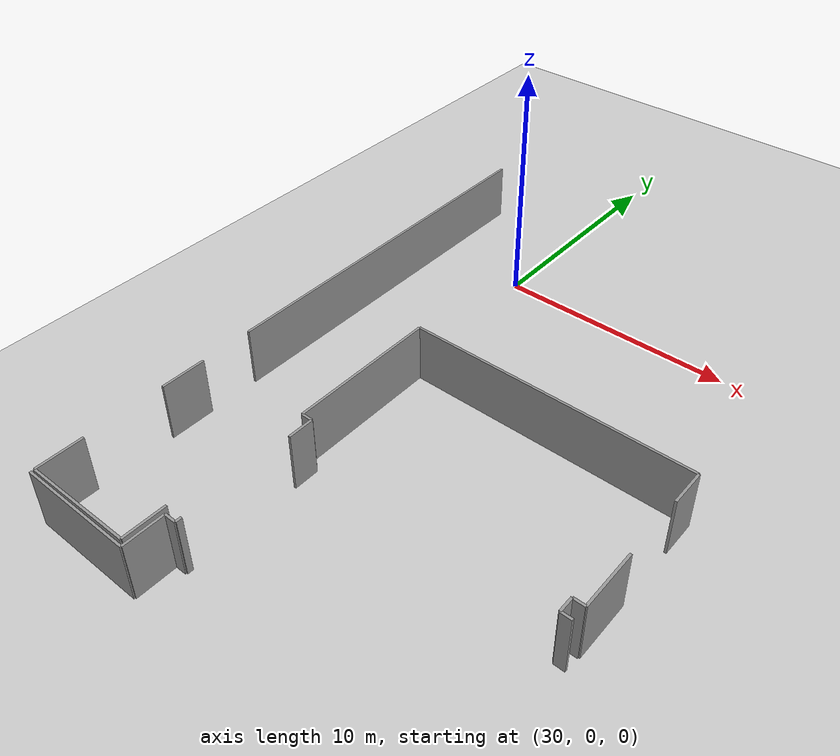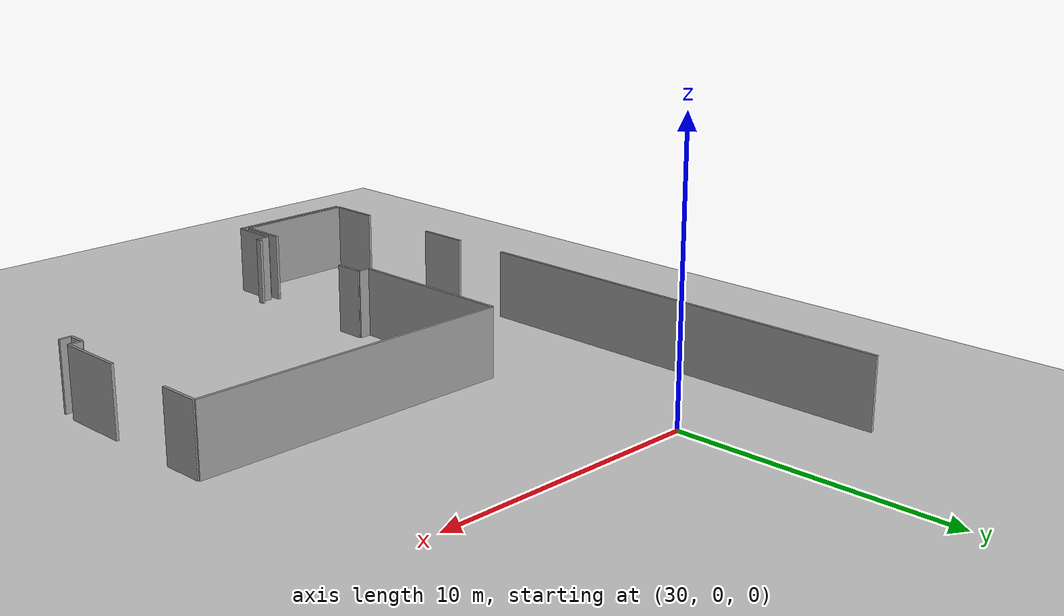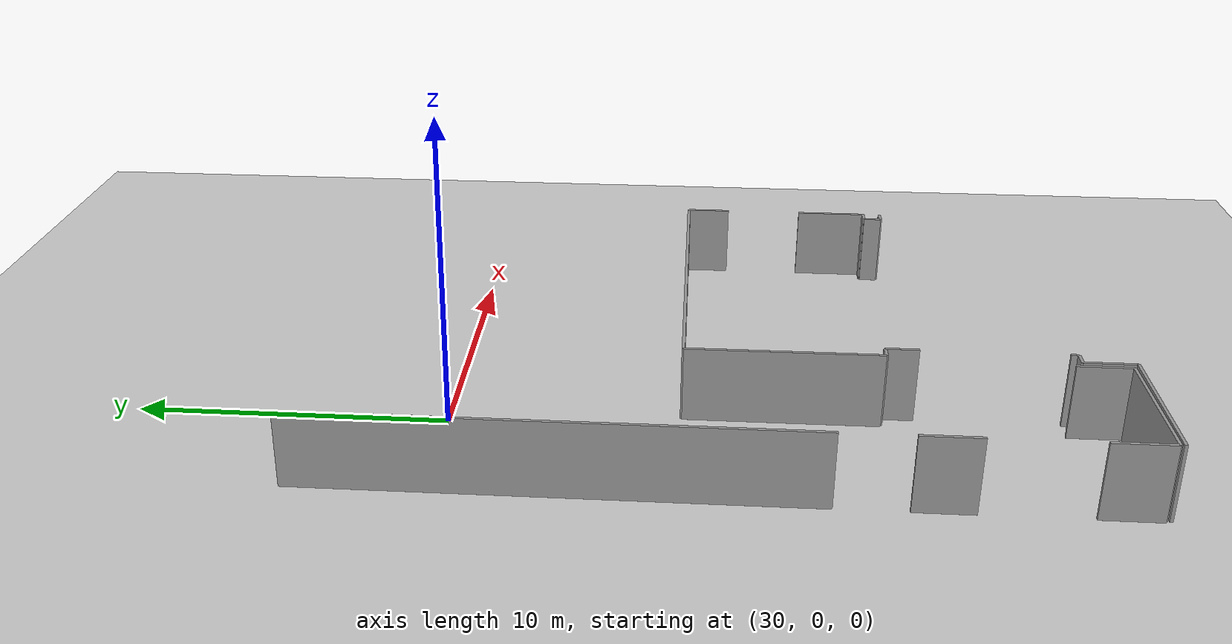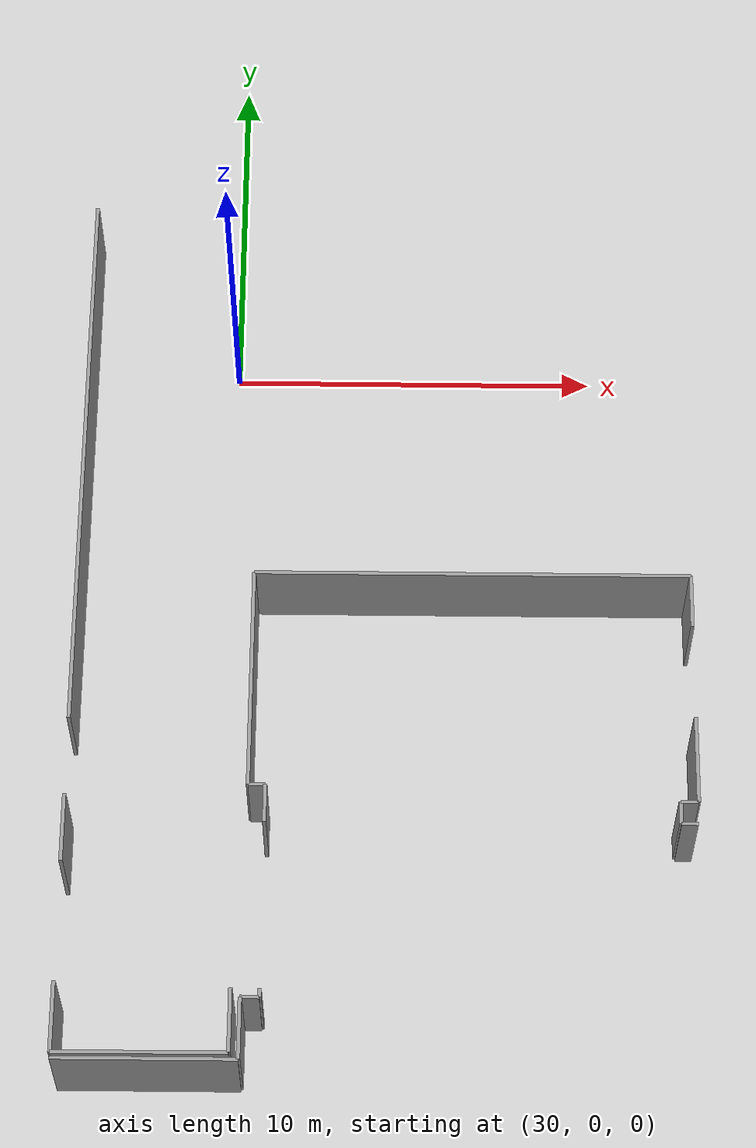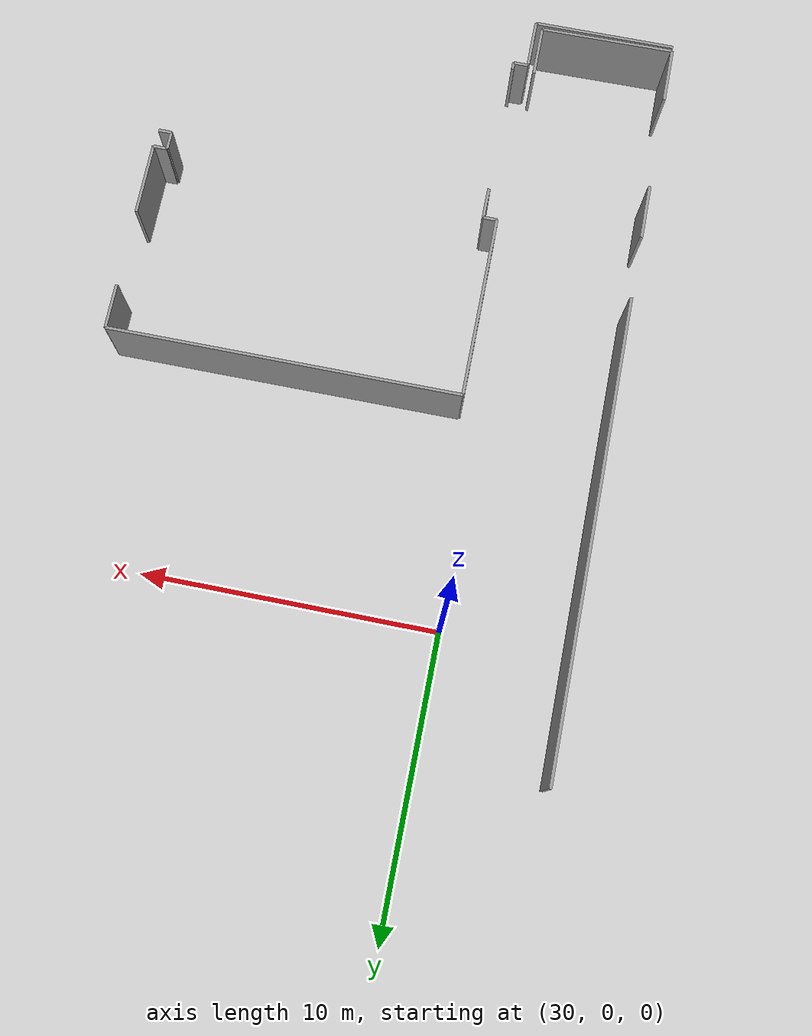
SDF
<sdf version="1.6">
 <world name="default">
  <model name="ground_plane">
   <static>1</static>
   <link name="link">
    <collision name="collision">
     <geometry><plane><normal>0 0 1</normal><size>100 100</size></plane></geometry>
     <surface><friction><ode><mu>100</mu><mu2>50</mu2></ode></friction></surface>
    </collision>
    <visual name="visual">
     <cast_shadows>0</cast_shadows>
     <geometry><plane><normal>0 0 1</normal><size>100 100</size></plane></geometry>
     <material>
      <script><uri>file://media/materials/scripts/gazebo.material</uri><name>Gazebo/Grey</name></script>
     </material>
    </visual>
   </link>
  </model>
  <model name="50052749">
   <static>1</static>
   <link name="Wall_353">
    <collision name="Wall_353_Collision">
     <geometry><box><size>0.443405843777 0.1 2.5</size></box></geometry>
     <pose>0.221702921889 0 1.25 0 0 0</pose>
    </collision>
    <visual name="Wall_353_Visual">
     <pose>0.221702921889 0 1.25 0 0 0</pose>
     <geometry><box><size>0.443405843777 0.1 2.5</size></box></geometry>
     <material>
      <script><uri>file://media/materials/scripts/gazebo.material</uri><name>Gazebo/Grey</name></script>
      <ambient>1 1 1 1</ambient>
     </material>
    </visual>
    <pose>84.9666779938 -46.8747305584 0 0 0 3.14159265359</pose>
   </link>
   <link name="Wall_354">
    <collision name="Wall_354_Collision">
     <geometry><box><size>0.617370046712 0.1 2.5</size></box></geometry>
     <pose>0.308685023356 0 1.25 0 0 0</pose>
    </collision>
    <visual name="Wall_354_Visual">
     <pose>0.308685023356 0 1.25 0 0 0</pose>
     <geometry><box><size>0.617370046712 0.1 2.5</size></box></geometry>
     <material>
      <script><uri>file://media/materials/scripts/gazebo.material</uri><name>Gazebo/Grey</name></script>
      <ambient>1 1 1 1</ambient>
     </material>
    </visual>
    <pose>84.52327215 -46.8747305584 0 0 0 1.57079632679</pose>
   </link>
   <link name="Wall_355">
    <collision name="Wall_355_Collision">
     <geometry><box><size>0.474217287883 0.1 2.5</size></box></geometry>
     <pose>0.237108643941 0 1.25 0 0 0</pose>
    </collision>
    <visual name="Wall_355_Visual">
     <pose>0.237108643941 0 1.25 0 0 0</pose>
     <geometry><box><size>0.474217287883 0.1 2.5</size></box></geometry>
     <material>
      <script><uri>file://media/materials/scripts/gazebo.material</uri><name>Gazebo/Grey</name></script>
      <ambient>1 1 1 1</ambient>
     </material>
    </visual>
    <pose>84.52327215 -46.2573605116 0 0 0 0.0</pose>
   </link>
   <link name="Wall_356">
    <collision name="Wall_356_Collision">
     <geometry><box><size>2.44006349947 0.1 2.5</size></box></geometry>
     <pose>1.22003174973 0 1.25 0 0 0</pose>
    </collision>
    <visual name="Wall_356_Visual">
     <pose>1.22003174973 0 1.25 0 0 0</pose>
     <geometry><box><size>2.44006349947 0.1 2.5</size></box></geometry>
     <material>
      <script><uri>file://media/materials/scripts/gazebo.material</uri><name>Gazebo/Grey</name></script>
      <ambient>1 1 1 1</ambient>
     </material>
    </visual>
    <pose>84.9974894379 -46.2573605116 0 0 0 1.57079632679</pose>
   </link>
   <link name="Wall_357">
    <collision name="Wall_357_Collision">
     <geometry><box><size>1.51736852516 0.1 2.5</size></box></geometry>
     <pose>0.758684262579 0 1.25 0 0 0</pose>
    </collision>
    <visual name="Wall_357_Visual">
     <pose>0.758684262579 0 1.25 0 0 0</pose>
     <geometry><box><size>1.51736852516 0.1 2.5</size></box></geometry>
     <material>
      <script><uri>file://media/materials/scripts/gazebo.material</uri><name>Gazebo/Grey</name></script>
      <ambient>1 1 1 1</ambient>
     </material>
    </visual>
    <pose>84.9974894379 -41.1327706969 0 0 0 1.57079632679</pose>
   </link>
   <link name="Wall_358">
    <collision name="Wall_358_Collision">
     <geometry><box><size>11.8521354993 0.1 2.5</size></box></geometry>
     <pose>5.92606774967 0 1.25 0 0 0</pose>
    </collision>
    <visual name="Wall_358_Visual">
     <pose>5.92606774967 0 1.25 0 0 0</pose>
     <geometry><box><size>11.8521354993 0.1 2.5</size></box></geometry>
     <material>
      <script><uri>file://media/materials/scripts/gazebo.material</uri><name>Gazebo/Grey</name></script>
      <ambient>1 1 1 1</ambient>
     </material>
    </visual>
    <pose>84.9974894379 -39.6154021718 0 0 0 3.14159265359</pose>
   </link>
   <link name="Wall_359">
    <collision name="Wall_359_Collision">
     <geometry><box><size>6.24280432324 0.1 2.5</size></box></geometry>
     <pose>3.12140216162 0 1.25 0 0 0</pose>
    </collision>
    <visual name="Wall_359_Visual">
     <pose>3.12140216162 0 1.25 0 0 0</pose>
     <geometry><box><size>6.24280432324 0.1 2.5</size></box></geometry>
     <material>
      <script><uri>file://media/materials/scripts/gazebo.material</uri><name>Gazebo/Grey</name></script>
      <ambient>1 1 1 1</ambient>
     </material>
    </visual>
    <pose>73.1453539385 -39.6154021718 0 0 0 -1.57079632679</pose>
   </link>
   <link name="Wall_360">
    <collision name="Wall_360_Collision">
     <geometry><box><size>0.456212246471 0.1 2.5</size></box></geometry>
     <pose>0.228106123236 0 1.25 0 0 0</pose>
    </collision>
    <visual name="Wall_360_Visual">
     <pose>0.228106123236 0 1.25 0 0 0</pose>
     <geometry><box><size>0.456212246471 0.1 2.5</size></box></geometry>
     <material>
      <script><uri>file://media/materials/scripts/gazebo.material</uri><name>Gazebo/Grey</name></script>
      <ambient>1 1 1 1</ambient>
     </material>
    </visual>
    <pose>73.1453539385 -45.858206495 0 0 0 0.0</pose>
   </link>
   <link name="Wall_361">
    <collision name="Wall_361_Collision">
     <geometry><box><size>1.06064909442 0.1 2.5</size></box></geometry>
     <pose>0.530324547211 0 1.25 0 0 0</pose>
    </collision>
    <visual name="Wall_361_Visual">
     <pose>0.530324547211 0 1.25 0 0 0</pose>
     <geometry><box><size>1.06064909442 0.1 2.5</size></box></geometry>
     <material>
      <script><uri>file://media/materials/scripts/gazebo.material</uri><name>Gazebo/Grey</name></script>
      <ambient>1 1 1 1</ambient>
     </material>
    </visual>
    <pose>73.601566185 -45.858206495 0 0 0 -1.57079632679</pose>
   </link>
   <link name="Wall_362">
    <collision name="Wall_362_Collision">
     <geometry><box><size>0.24091252593 0.1 2.5</size></box></geometry>
     <pose>0.120456262965 0 1.25 0 0 0</pose>
    </collision>
    <visual name="Wall_362_Visual">
     <pose>0.120456262965 0 1.25 0 0 0</pose>
     <geometry><box><size>0.24091252593 0.1 2.5</size></box></geometry>
     <material>
      <script><uri>file://media/materials/scripts/gazebo.material</uri><name>Gazebo/Grey</name></script>
      <ambient>1 1 1 1</ambient>
     </material>
    </visual>
    <pose>73.601566185 -51.5116627022 0 0 0 -1.57079632679</pose>
   </link>
   <link name="Wall_363">
    <collision name="Wall_363_Collision">
     <geometry><box><size>0.495392230951 0.1 2.5</size></box></geometry>
     <pose>0.247696115476 0 1.25 0 0 0</pose>
    </collision>
    <visual name="Wall_363_Visual">
     <pose>0.247696115476 0 1.25 0 0 0</pose>
     <geometry><box><size>0.495392230951 0.1 2.5</size></box></geometry>
     <material>
      <script><uri>file://media/materials/scripts/gazebo.material</uri><name>Gazebo/Grey</name></script>
      <ambient>1 1 1 1</ambient>
     </material>
    </visual>
    <pose>73.601566185 -51.7525752281 0 0 0 3.14159265359</pose>
   </link>
   <link name="Wall_364">
    <collision name="Wall_364_Collision">
     <geometry><box><size>1.66052128399 0.1 2.5</size></box></geometry>
     <pose>0.830260641994 0 1.25 0 0 0</pose>
    </collision>
    <visual name="Wall_364_Visual">
     <pose>0.830260641994 0 1.25 0 0 0</pose>
     <geometry><box><size>1.66052128399 0.1 2.5</size></box></geometry>
     <material>
      <script><uri>file://media/materials/scripts/gazebo.material</uri><name>Gazebo/Grey</name></script>
      <ambient>1 1 1 1</ambient>
     </material>
    </visual>
    <pose>73.1061739541 -51.7525752281 0 0 0 -1.57079632679</pose>
   </link>
   <link name="Wall_365">
    <collision name="Wall_365_Collision">
     <geometry><box><size>4.77907053412 0.1 2.5</size></box></geometry>
     <pose>2.38953526706 0 1.25 0 0 0</pose>
    </collision>
    <visual name="Wall_365_Visual">
     <pose>2.38953526706 0 1.25 0 0 0</pose>
     <geometry><box><size>4.77907053412 0.1 2.5</size></box></geometry>
     <material>
      <script><uri>file://media/materials/scripts/gazebo.material</uri><name>Gazebo/Grey</name></script>
      <ambient>1 1 1 1</ambient>
     </material>
    </visual>
    <pose>73.1061739541 -53.4130965121 0 0 0 3.14159265359</pose>
   </link>
   <link name="Wall_395">
    <collision name="Wall_395_Collision">
     <geometry><box><size>1.89560119087 0.1 2.5</size></box></geometry>
     <pose>0.947800595434 0 1.25 0 0 0</pose>
    </collision>
    <visual name="Wall_395_Visual">
     <pose>0.947800595434 0 1.25 0 0 0</pose>
     <geometry><box><size>1.89560119087 0.1 2.5</size></box></geometry>
     <material>
      <script><uri>file://media/materials/scripts/gazebo.material</uri><name>Gazebo/Grey</name></script>
      <ambient>1 1 1 1</ambient>
     </material>
    </visual>
    <pose>68.329132157 -53.2633503578 0 0 0 1.57079632679</pose>
   </link>
   <link name="Wall_396">
    <collision name="Wall_396_Collision">
     <geometry><box><size>1.87163673434 0.1 2.5</size></box></geometry>
     <pose>0.935818367171 0 1.25 0 0 0</pose>
    </collision>
    <visual name="Wall_396_Visual">
     <pose>0.935818367171 0 1.25 0 0 0</pose>
     <geometry><box><size>1.87163673434 0.1 2.5</size></box></geometry>
     <material>
      <script><uri>file://media/materials/scripts/gazebo.material</uri><name>Gazebo/Grey</name></script>
      <ambient>1 1 1 1</ambient>
     </material>
    </visual>
    <pose>68.329132157 -48.0577378567 0 0 0 1.57079632679</pose>
   </link>
   <link name="Wall_397">
    <collision name="Wall_397_Collision">
     <geometry><box><size>16.0499728656 0.1 2.5</size></box></geometry>
     <pose>8.02498643282 0 1.25 0 0 0</pose>
    </collision>
    <visual name="Wall_397_Visual">
     <pose>8.02498643282 0 1.25 0 0 0</pose>
     <geometry><box><size>16.0499728656 0.1 2.5</size></box></geometry>
     <material>
      <script><uri>file://media/materials/scripts/gazebo.material</uri><name>Gazebo/Grey</name></script>
      <ambient>1 1 1 1</ambient>
     </material>
    </visual>
    <pose>68.329132157 -43.9902468466 0 0 0 1.57079632679</pose>
   </link>
   <link name="Wall_408">
    <collision name="Wall_408_Collision">
     <geometry><box><size>1.7334290221 0.1 2.5</size></box></geometry>
     <pose>0.866714511049 0 1.25 0 0 0</pose>
    </collision>
    <visual name="Wall_408_Visual">
     <pose>0.866714511049 0 1.25 0 0 0</pose>
     <geometry><box><size>1.7334290221 0.1 2.5</size></box></geometry>
     <material>
      <script><uri>file://media/materials/scripts/gazebo.material</uri><name>Gazebo/Grey</name></script>
      <ambient>1 1 1 1</ambient>
     </material>
    </visual>
    <pose>72.8580340524 -51.5003778523 0 0 0 -1.57079632679</pose>
   </link>
   <link name="Wall_409">
    <collision name="Wall_409_Collision">
     <geometry><box><size>4.52899825514 0.1 2.5</size></box></geometry>
     <pose>2.26449912757 0 1.25 0 0 0</pose>
    </collision>
    <visual name="Wall_409_Visual">
     <pose>2.26449912757 0 1.25 0 0 0</pose>
     <geometry><box><size>4.52899825514 0.1 2.5</size></box></geometry>
     <material>
      <script><uri>file://media/materials/scripts/gazebo.material</uri><name>Gazebo/Grey</name></script>
      <ambient>1 1 1 1</ambient>
     </material>
    </visual>
    <pose>72.8580340524 -53.2338068744 0 0 0 -3.13506942454</pose>
   </link>
   <pose>-42.45 32.2703051221 0 0 0 0</pose>
  </model>
 </world>
</sdf>
